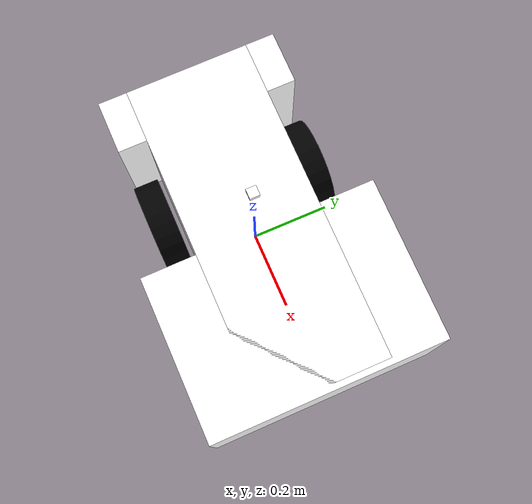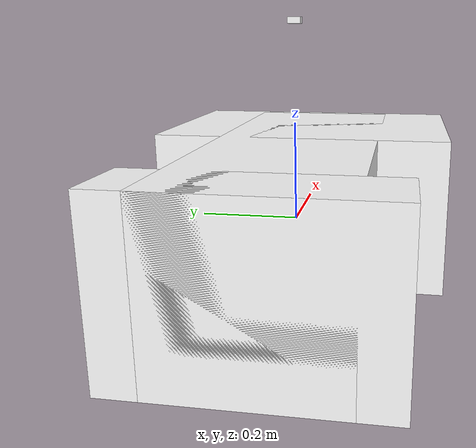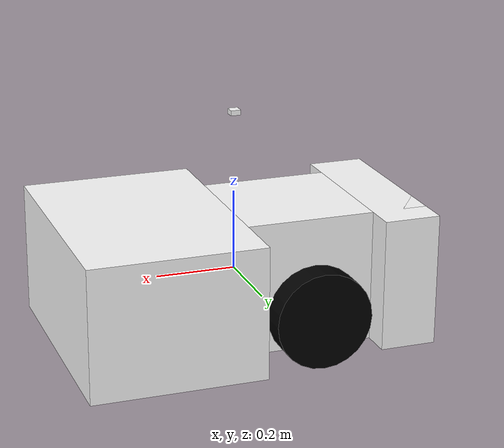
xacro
<?xml version="1.0"?>
<robot xmlns:xacro="http://www.ros.org/wiki/xacro" name="mower">

  <xacro:property name="platform_l" value="0.876" />
  <xacro:property name="platform_w" value="0.33" />
  <xacro:property name="platform_h" value="0.33" />
  <xacro:property name="wheel_r" value="0.121" />
  <xacro:property name="wheel_l" value="0.068" />
  <xacro:property name="wheel_gap" value="0.0125" />

  <link name="base_link">
    <visual>
      <geometry>
        <box size="0.001 0.001 0.001"/>
      </geometry>
      <material name="black">
        <color rgba="0 0 0 1" />
      </material>
    </visual>
  </link>

  <!-- Bot platform -->
  <link name="platform">
    <visual>
      <geometry>
        <box size="${platform_l} ${platform_w} ${platform_h}"/>
      </geometry>
      <material name="white">
        <color rgba="1 1 1 1" />
      </material>
    </visual>
  </link>
  <joint name="platform_joint" type="fixed">
    <parent link="base_link" />
    <child link="platform" />
    <origin xyz="0 0 0" rpy="0 0 0" />
  </joint>

  <link name="platform_f">
    <visual>
      <geometry>
        <box size="0.432 0.622  ${platform_h}" />
      </geometry>
      <material name="white" />
    </visual>
  </link>
  <joint name="platform_f_joint" type="fixed">
    <parent link="base_link" />
    <child link="platform_f" />
    <origin xyz="0.238 0  0" />
  </joint>

  <link name="platform_b">
    <visual>
      <geometry>
        <box size="0.14  0.483 ${platform_h}" />
      </geometry>
      <material name="white" />
    </visual>
  </link>
  <joint name="platform_b_joint" type="fixed">
    <parent link="base_link" />
    <child link="platform_b" />
    <origin xyz="-0.368 0 0" />
  </joint>

  <!-- Drive Wheels -->
    <xacro:macro name="wheel" params="pos rpy">
      <link name="wheel_${pos}">
        <visual>
          <geometry>
            <cylinder radius="${wheel_r}" length="${wheel_l}" />
          </geometry>
          <origin rpy="${rpy}" />
          <material name="black">
            <color rgba="0 0 0 1" />
          </material>
        </visual>
      </link>
    </xacro:macro>
    <xacro:wheel pos="right" rpy="${pi / 2} 0 0" />
    <xacro:wheel pos="left" rpy="${(pi / 2) * -1} 0 0" />
    <xacro:macro name="wheel_joint" params="pos xyz">
      <joint name="wheel_${pos}_joint" type="continuous">
        <parent link="base_link" />
        <child link="wheel_${pos}" />
        <axis xyz="0 1 0" />
        <origin rpy="0 0 0" xyz="${xyz}" />
      </joint>
    </xacro:macro>
    <xacro:wheel_joint pos="left" xyz="-0.146 ${(platform_w / 2) + (wheel_l / 2) + wheel_gap} -${(platform_h / 2) - wheel_r + 0.025}" />
    <xacro:wheel_joint pos="right" xyz="-0.146 ${((platform_w / 2) + (wheel_l / 2) + wheel_gap) * -1} -${(platform_h / 2) - wheel_r + 0.025}" />

<!-- Front Wheel -->
  <link name="wheel_f">
    <visual>
      <geometry>
        <sphere radius="0.1" />
      </geometry>
      <material name="black" />
    </visual>
  </link>
  <joint name="wheel_f_joint" type="fixed">
    <parent link="base_link" />
    <child link="wheel_f" />
    <origin xyz="0.336 0 -${(platform_h / 2) - 0.1 + 0.025}" />
  </joint>

<!-- GPS -->
  <link name="gps">
    <visual>
      <geometry>
        <box size="0.025 0.025 0.0125" />
      </geometry>
      <material name="white" />
    </visual>
  </link>
  <joint name="gps_joint" type="fixed">
    <parent link="base_link" />
    <child link="gps" />
    <origin xyz="0 0 .4" />
  </joint>

</robot>
